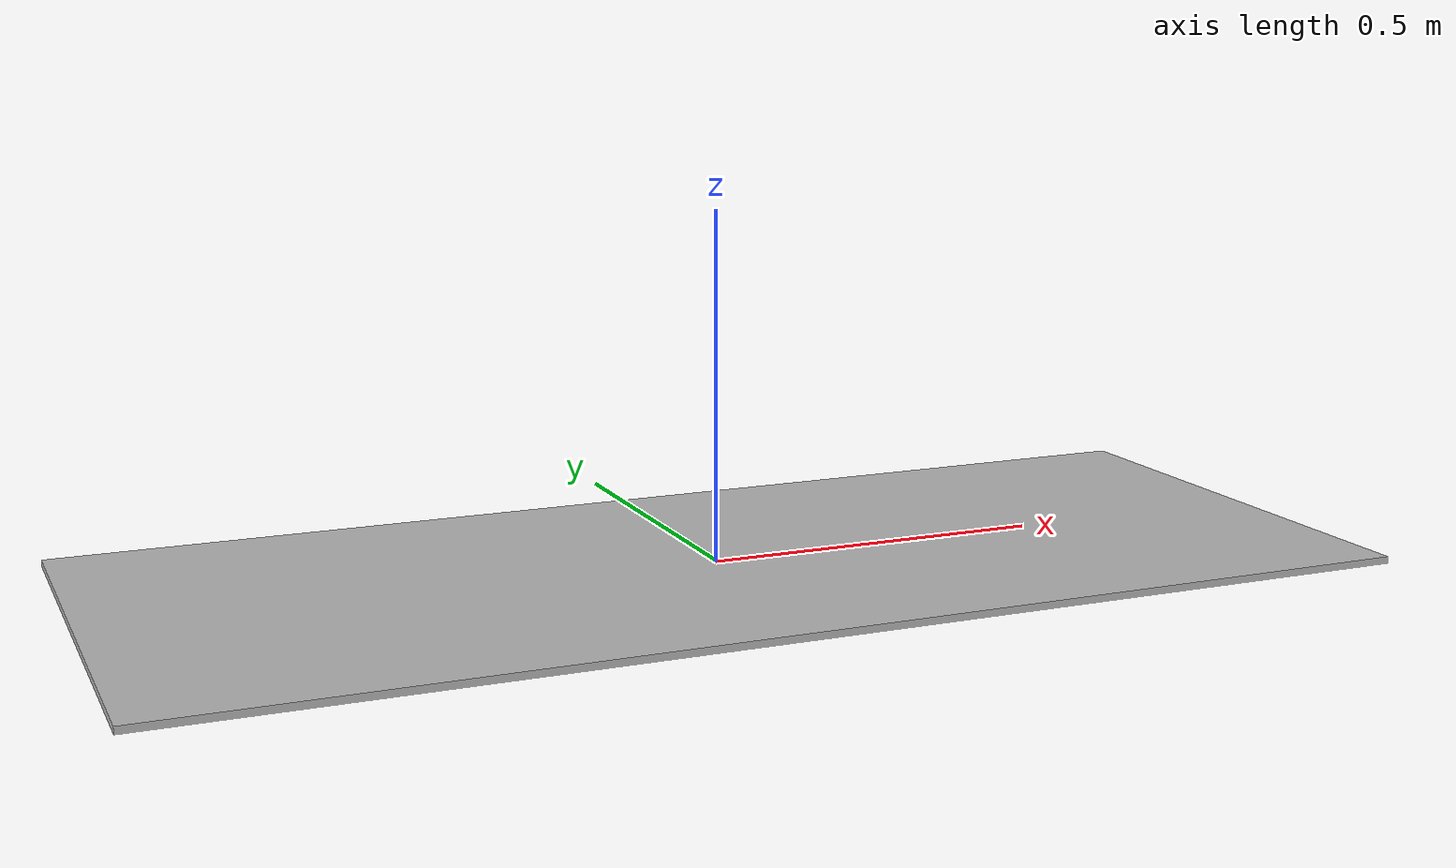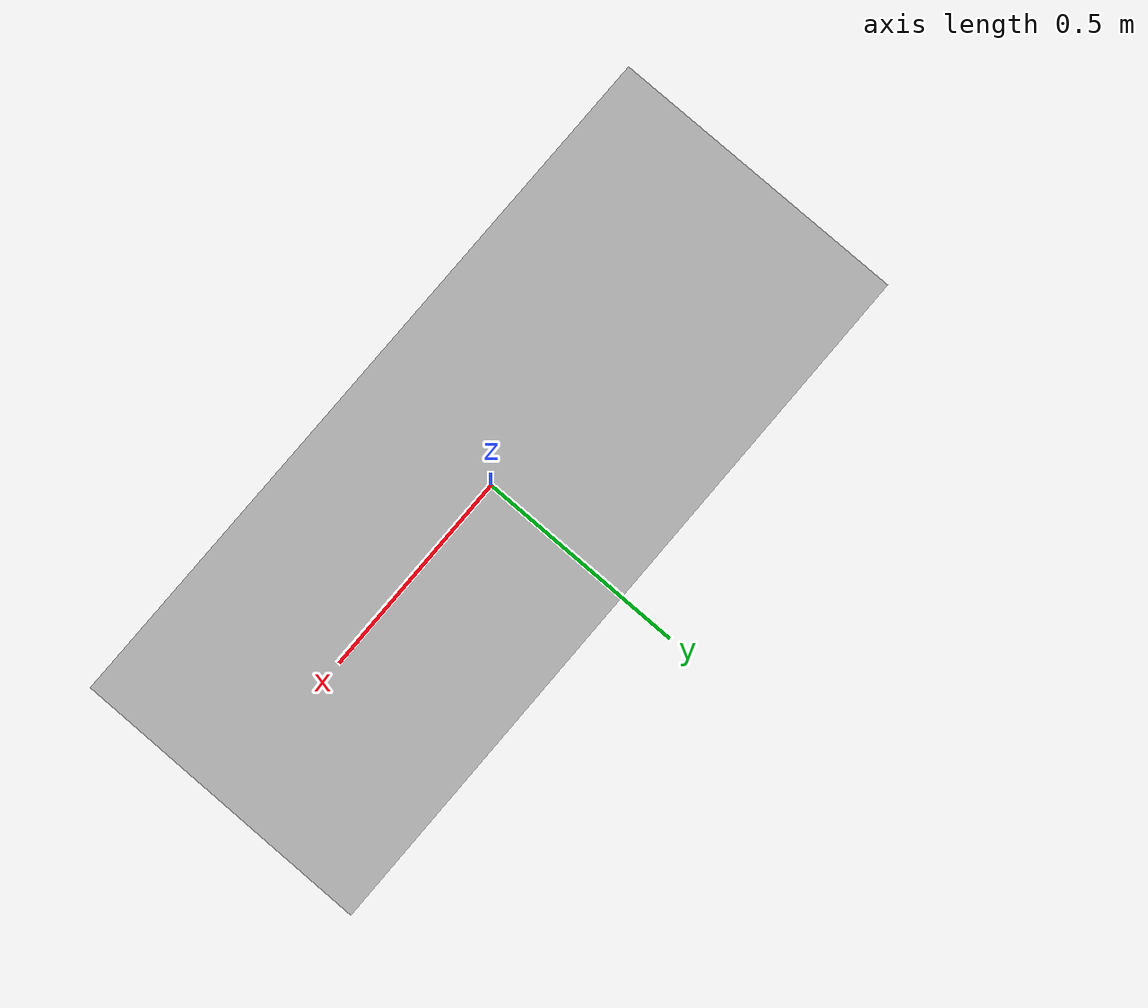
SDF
<?xml version="1.0" ?>
<sdf version="1.4">
  <model name="fire_hose_reel">
    <static>true</static>
    <link name="link">
      <pose>0 0 0 0 0 0</pose>
      <visual name="visual">
        <cast_shadows>false</cast_shadows>
        <geometry>
          <box>
            <size>1.763 0.732 0.01</size>
          </box>
        </geometry>
        <material>
          <script>
            <uri>model://fire_hose_reel/materials/scripts</uri>
            <uri>model://fire_hose_reel/materials/textures</uri>
            <name>fire_hose_reel</name>
          </script>
        </material>
      </visual>
    </link>
  </model>
</sdf>
